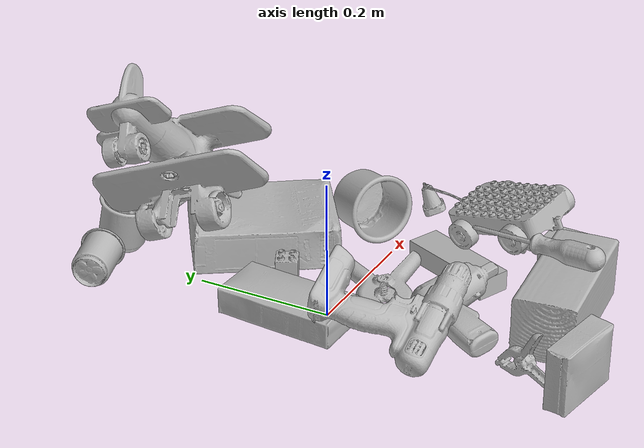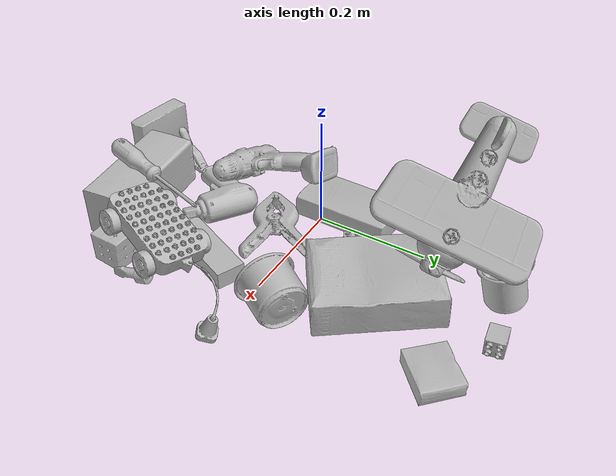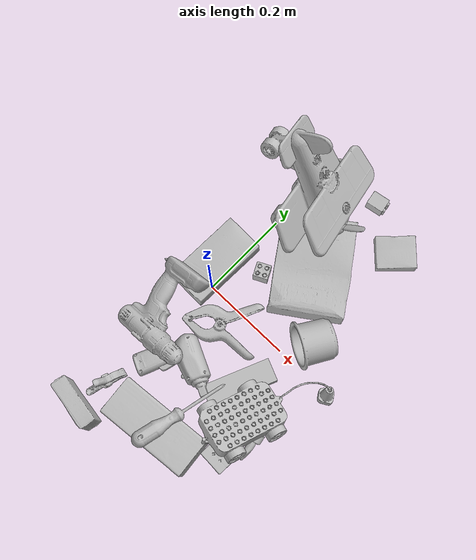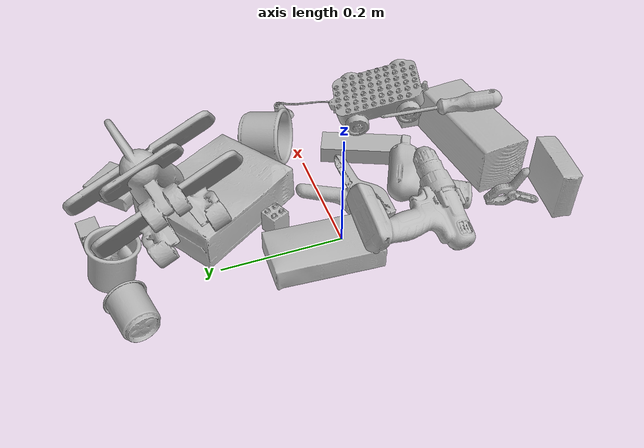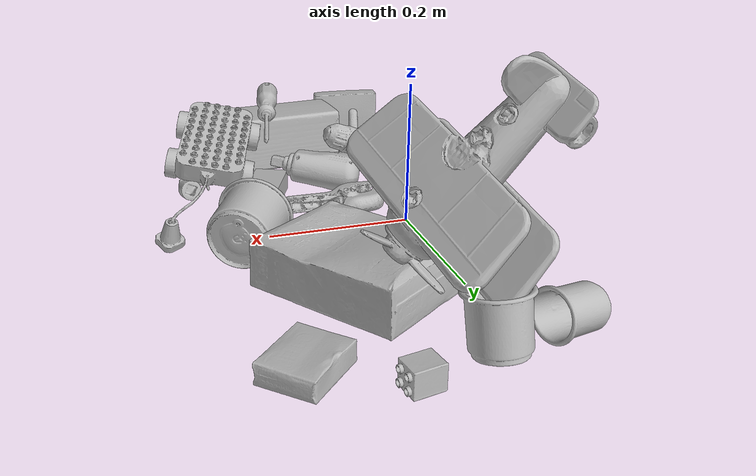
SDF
<sdf version="1.4">
  <world name="default">
    <light name="light1" type="point">
      <pose>0 0 1 0 0 0</pose>
      <diffuse>3 3 3 1</diffuse>
      <specular>3 3 3 1</specular>
    </light>
    <light name="light2" type="point">
      <pose>0 0.5 2 0 0 0</pose>
      <diffuse>1 1 1 1</diffuse>
      <specular>1 1 1 1</specular>
    </light>
    <light name="light3" type="point">
      <pose>0 0.5 2 0 0 0</pose>
      <diffuse>3 3 3 1</diffuse>
      <specular>3 3 3 1</specular>
    </light>
    <scene>
      <ambient>0.7 0.7 0.7</ambient>
    </scene>
    <model name="box21">
      <link name="link_box21">
        <collision name="default">
          <geometry>
            <mesh>
              <uri>model://cracker_box/collision_meshes/collision.obj</uri>
              <scale>1.0 1.0 1.0</scale>
            </mesh>
          </geometry>
          <surface>
            <friction>
              <ode>
                <mu>0.5</mu>
                <mu2>0.5</mu2>
              </ode>
            </friction>
          <contact>
        <ode>
            <max_vel>0</max_vel>
            <min_depth>0.0001</min_depth>
            <kp>1e8</kp>
        </ode>
    </contact></surface>
        </collision>
        <visual name="default">
          <geometry>
            <mesh>
              <uri>model://cracker_box/visual_meshes/visual.dae</uri>
              <scale>1.0 1.0 1.0</scale>
            </mesh>
          </geometry>
        </visual>
        <inertial>
          <mass>2.2869980335235596</mass>
          <pose>0.0009464151225984097 0.0002543425071053207 -0.0017029535956680775 -0.0003162075418873318 -0.011106487737663914 0.0025467956997025456</pose>
          <inertia>
            <ixx>0.005817102</ixx>
            <iyy>0.009605178</iyy>
            <izz>0.013707472</izz>
            <ixy>0</ixy>
            <ixz>0</ixz>
            <iyz>0</iyz>
          </inertia>
        </inertial>
      </link>
      <pose>0.1287691295146942 0.1736784428358078 0.036481600254774094 -0.011803749536822512 -0.0073676758945942 2.1692019973969554</pose>
    </model>
    <model name="box22">
      <link name="link_box22">
        <collision name="default">
          <geometry>
            <mesh>
              <uri>model://pudding_box/collision_meshes/collision.obj</uri>
              <scale>1.0 1.0 1.0</scale>
            </mesh>
          </geometry>
          <surface>
            <friction>
              <ode>
                <mu>0.5</mu>
                <mu2>0.5</mu2>
              </ode>
            </friction>
          <contact>
        <ode>
            <max_vel>0</max_vel>
            <min_depth>0.0001</min_depth>
            <kp>1e8</kp>
        </ode>
    </contact></surface>
        </collision>
        <visual name="default">
          <geometry>
            <mesh>
              <uri>model://pudding_box/visual_meshes/visual.dae</uri>
              <scale>1.0 1.0 1.0</scale>
            </mesh>
          </geometry>
        </visual>
        <inertial>
          <mass>0.5370154976844788</mass>
          <pose>0.0004894821904599667 0.0008067885646596551 -0.0005188827635720372 0.005213101796859606 -0.006603800100757192 0.02007981956729938</pose>
          <inertia>
            <ixx>0.0006070684</ixx>
            <iyy>0.00040843996</iyy>
            <izz>0.00089649507</izz>
            <ixy>0</ixy>
            <ixz>0</ixz>
            <iyz>0</iyz>
          </inertia>
        </inertial>
      </link>
      <pose>-0.023392070084810257 -0.37146079540252686 0.0445966012775898 0.006649825149709273 -1.547314605401711 -1.7620697774649143</pose>
    </model>
    <model name="box23">
      <link name="link_box23">
        <collision name="default">
          <geometry>
            <mesh>
              <uri>model://jenga/collision_meshes/collision.obj</uri>
              <scale>1.0 1.0 1.0</scale>
            </mesh>
          </geometry>
          <surface>
            <friction>
              <ode>
                <mu>0.5</mu>
                <mu2>0.5</mu2>
              </ode>
            </friction>
          <contact>
        <ode>
            <max_vel>0</max_vel>
            <min_depth>0.0001</min_depth>
            <kp>1e8</kp>
        </ode>
    </contact></surface>
        </collision>
        <visual name="default">
          <geometry>
            <mesh>
              <uri>model://jenga/visual_meshes/visual.dae</uri>
              <scale>1.0 1.0 1.0</scale>
            </mesh>
          </geometry>
        </visual>
        <inertial>
          <mass>0.17325031757354736</mass>
          <pose>-2.502855807051674e-07 -0.0001025000965455547 -4.0923401684267446e-05 0.0 -7.34215461761844e-07 0.0</pose>
          <inertia>
            <ixx>4.7942573e-05</ixx>
            <iyy>0.00032485754</iyy>
            <izz>0.00034681303</izz>
            <ixy>0</ixy>
            <ixz>0</ixz>
            <iyz>0</iyz>
          </inertia>
        </inertial>
      </link>
      <pose>0.186960369348526 -0.1101660504937172 0.01499966811388731 2.8027771470168465e-06 1.3698683522651204e-06 1.1590050528612685</pose>
    </model>
    <model name="cup1">
      <link name="link_cup1">
        <collision name="default">
          <geometry>
            <mesh>
              <uri>model://c_cups/collision_meshes/collision.obj</uri>
              <scale>1.0 1.0 1.0</scale>
            </mesh>
          </geometry>
          <surface>
            <friction>
              <ode>
                <mu>0.5</mu>
                <mu2>0.5</mu2>
              </ode>
            </friction>
          <contact>
        <ode>
            <max_vel>0</max_vel>
            <min_depth>0.0001</min_depth>
            <kp>1e8</kp>
        </ode>
    </contact></surface>
        </collision>
        <visual name="default">
          <geometry>
            <mesh>
              <uri>model://c_cups/visual_meshes/visual.dae</uri>
              <scale>1.0 1.0 1.0</scale>
            </mesh>
          </geometry>
        </visual>
        <inertial>
          <mass>0.033937059342861176</mass>
          <pose>0.0007237257086671889 0.002015391131862998 -0.0012750985333696008 0.3021568203324006 0.0134615240317058 -0.08771816491093205</pose>
          <inertia>
            <ixx>2.5238536e-05</ixx>
            <iyy>2.4792533e-05</iyy>
            <izz>2.2320162e-05</izz>
            <ixy>0</ixy>
            <ixz>0</ixz>
            <iyz>0</iyz>
          </inertia>
        </inertial>
      </link>
      <pose>-0.0621798001229763 0.3356654942035675 0.02987067773938179 1.4750800087513558 -0.39544597107955626 1.8769943720118532</pose>
    </model>
    <model name="cup2">
      <link name="link_cup2">
        <collision name="default">
          <geometry>
            <mesh>
              <uri>model://f_cups/collision_meshes/collision.obj</uri>
              <scale>1.0 1.0 1.0</scale>
            </mesh>
          </geometry>
          <surface>
            <friction>
              <ode>
                <mu>0.5</mu>
                <mu2>0.5</mu2>
              </ode>
            </friction>
          <contact>
        <ode>
            <max_vel>0</max_vel>
            <min_depth>0.0001</min_depth>
            <kp>1e8</kp>
        </ode>
    </contact></surface>
        </collision>
        <visual name="default">
          <geometry>
            <mesh>
              <uri>model://f_cups/visual_meshes/visual.dae</uri>
              <scale>1.0 1.0 1.0</scale>
            </mesh>
          </geometry>
        </visual>
        <inertial>
          <mass>0.10278050601482391</mass>
          <pose>-0.003171466989442706 -0.0006240068469196558 -0.003655537962913513 0.7862283183637603 -0.2607933822369466 -0.1823733550036739</pose>
          <inertia>
            <ixx>9.661645e-05</ixx>
            <iyy>0.00010135175</iyy>
            <izz>0.000105510015</izz>
            <ixy>0</ixy>
            <ixz>0</ixz>
            <iyz>0</iyz>
          </inertia>
        </inertial>
      </link>
      <pose>0.035383958369493484 0.35215526819229126 0.04172515869140625 -0.05192630018212439 -0.21088486593916483 1.9341306842571968</pose>
    </model>
    <model name="box11">
      <link name="link_box11">
        <collision name="default">
          <geometry>
            <mesh>
              <uri>model://wood_block/collision_meshes/collision.obj</uri>
              <scale>1.0 1.0 1.0</scale>
            </mesh>
          </geometry>
          <surface>
            <friction>
              <ode>
                <mu>0.5</mu>
                <mu2>0.5</mu2>
              </ode>
            </friction>
          <contact>
        <ode>
            <max_vel>0</max_vel>
            <min_depth>0.0001</min_depth>
            <kp>1e8</kp>
        </ode>
    </contact></surface>
        </collision>
        <visual name="default">
          <geometry>
            <mesh>
              <uri>model://wood_block/visual_meshes/visual.dae</uri>
              <scale>1.0 1.0 1.0</scale>
            </mesh>
          </geometry>
        </visual>
        <inertial>
          <mass>2.321592330932617</mass>
          <pose>-5.813315056002466e-06 -0.000570809468626976 0.0002640858292579651 -0.052209755297172346 -0.005192694580027673 -0.006861376555374886</pose>
          <inertia>
            <ixx>0.0031066423</ixx>
            <iyy>0.009813884</iyy>
            <izz>0.009777175</izz>
            <ixy>0</ixy>
            <ixz>0</ixz>
            <iyz>0</iyz>
          </inertia>
        </inertial>
      </link>
      <pose>0.1273047924041748 -0.2946861684322357 0.045258525758981705 -0.005207897751808584 0.0057188129992489945 -3.050954865334337</pose>
    </model>
    <model name="box12">
      <link name="link_box12">
        <collision name="default">
          <geometry>
            <mesh>
              <uri>model://gelatin_box/collision_meshes/collision.obj</uri>
              <scale>1.0 1.0 1.0</scale>
            </mesh>
          </geometry>
          <surface>
            <friction>
              <ode>
                <mu>0.5</mu>
                <mu2>0.5</mu2>
              </ode>
            </friction>
          <contact>
        <ode>
            <max_vel>0</max_vel>
            <min_depth>0.0001</min_depth>
            <kp>1e8</kp>
        </ode>
    </contact></surface>
        </collision>
        <visual name="default">
          <geometry>
            <mesh>
              <uri>model://gelatin_box/visual_meshes/visual.dae</uri>
              <scale>1.0 1.0 1.0</scale>
            </mesh>
          </geometry>
        </visual>
        <inertial>
          <mass>0.2263340801000595</mass>
          <pose>0.0004319618456065655 0.00011156871914863586 -0.00036403207923285663 -0.001050371981036731 -0.004755818689382226 0.016440561334450605</pose>
          <inertia>
            <ixx>0.00015977336</ixx>
            <iyy>0.00011412529</iyy>
            <izz>0.00024321067</izz>
            <ixy>0</ixy>
            <ixz>0</ixz>
            <iyz>0</iyz>
          </inertia>
        </inertial>
      </link>
      <pose>0.23468869924545288 0.32464662194252014 0.01516831386834383 0.0055974721056838705 -0.007304559670557647 2.3410854101110177</pose>
    </model>
    <model name="box13">
      <link name="link_box13">
        <collision name="default">
          <geometry>
            <mesh>
              <uri>model://sugar_box/collision_meshes/collision.obj</uri>
              <scale>1.0 1.0 1.0</scale>
            </mesh>
          </geometry>
          <surface>
            <friction>
              <ode>
                <mu>0.5</mu>
                <mu2>0.5</mu2>
              </ode>
            </friction>
          <contact>
        <ode>
            <max_vel>0</max_vel>
            <min_depth>0.0001</min_depth>
            <kp>1e8</kp>
        </ode>
    </contact></surface>
        </collision>
        <visual name="default">
          <geometry>
            <mesh>
              <uri>model://sugar_box/visual_meshes/visual.dae</uri>
              <scale>1.0 1.0 1.0</scale>
            </mesh>
          </geometry>
        </visual>
        <inertial>
          <mass>0.4976349174976349</mass>
          <pose>0.0010343727190047503 3.849109634757042e-05 -0.00036364805418998003 -0.0004046263004245651 0.001050663405794887 0.002615379021776999</pose>
          <inertia>
            <ixx>0.0004146281</ixx>
            <iyy>0.0013401629</iyy>
            <izz>0.0016043353</izz>
            <ixy>0</ixy>
            <ixz>0</ixz>
            <iyz>0</iyz>
          </inertia>
        </inertial>
      </link>
      <pose>-0.030740322545170784 0.04236716777086258 0.022798707708716393 0.0007374107026261249 -0.023420584619531032 1.5273828760681512</pose>
    </model>
    <model name="box14">
      <link name="link_box14">
        <collision name="default">
          <geometry>
            <mesh>
              <uri>model://rubiks_cube/collision_meshes/collision.obj</uri>
              <scale>1.0 1.0 1.0</scale>
            </mesh>
          </geometry>
          <surface>
            <friction>
              <ode>
                <mu>0.5</mu>
                <mu2>0.5</mu2>
              </ode>
            </friction>
          <contact>
        <ode>
            <max_vel>0</max_vel>
            <min_depth>0.0001</min_depth>
            <kp>1e8</kp>
        </ode>
    </contact></surface>
        </collision>
        <visual name="default">
          <geometry>
            <mesh>
              <uri>model://rubiks_cube/visual_meshes/visual.dae</uri>
              <scale>1.0 1.0 1.0</scale>
            </mesh>
          </geometry>
        </visual>
        <inertial>
          <mass>0.2531126141548157</mass>
          <pose>2.6721041649580002e-05 5.2569666877388954e-05 -7.264316536748083e-06 -0.05467274129792389 -0.0981396008906979 -0.0344563195746163</pose>
          <inertia>
            <ixx>0.00013986173</ixx>
            <iyy>0.00013920949</iyy>
            <izz>0.00014102072</izz>
            <ixy>0</ixy>
            <ixz>0</ixz>
            <iyz>0</iyz>
          </inertia>
        </inertial>
      </link>
      <pose>0.2595959007740021 -0.24159422516822815 0.029059693217277527 -3.134143810183395 0.01089032313075639 1.4867840203220186</pose>
    </model>
    <model name="cup15">
      <link name="link_cup15">
        <collision name="default">
          <geometry>
            <mesh>
              <uri>model://j_cups/collision_meshes/collision.obj</uri>
              <scale>1.0 1.0 1.0</scale>
            </mesh>
          </geometry>
          <surface>
            <friction>
              <ode>
                <mu>0.5</mu>
                <mu2>0.5</mu2>
              </ode>
            </friction>
          <contact>
        <ode>
            <max_vel>0</max_vel>
            <min_depth>0.0001</min_depth>
            <kp>1e8</kp>
        </ode>
    </contact></surface>
        </collision>
        <visual name="default">
          <geometry>
            <mesh>
              <uri>model://j_cups/visual_meshes/visual.dae</uri>
              <scale>1.0 1.0 1.0</scale>
            </mesh>
          </geometry>
        </visual>
        <inertial>
          <mass>0.12765173614025116</mass>
          <pose>0.0006164864171296358 0.0005398980574682355 -0.0013479006011039019 0.030303852295551513 0.03757989298695449 0.4386938541947324</pose>
          <inertia>
            <ixx>0.00018743309</ixx>
            <iyy>0.00018938213</iyy>
            <izz>0.0002160715</izz>
            <ixy>0</ixy>
            <ixz>0</ixz>
            <iyz>0</iyz>
          </inertia>
        </inertial>
      </link>
      <pose>0.24134084582328796 0.057352226227521896 0.04694885388016701 -1.0421497974061986 1.3224749584094033 3.115083903251909</pose>
    </model>
    <model name="toy1">
      <link name="link_toy1">
        <collision name="default">
          <geometry>
            <mesh>
              <uri>model://f_lego_duplo/collision_meshes/collision.obj</uri>
              <scale>1.0 1.0 1.0</scale>
            </mesh>
          </geometry>
          <surface>
            <friction>
              <ode>
                <mu>0.5</mu>
                <mu2>0.5</mu2>
              </ode>
            </friction>
          <contact>
        <ode>
            <max_vel>0</max_vel>
            <min_depth>0.0001</min_depth>
            <kp>1e8</kp>
        </ode>
    </contact></surface>
        </collision>
        <visual name="default">
          <geometry>
            <mesh>
              <uri>model://f_lego_duplo/visual_meshes/visual.dae</uri>
              <scale>1.0 1.0 1.0</scale>
            </mesh>
          </geometry>
        </visual>
        <inertial>
          <mass>0.04013235494494438</mass>
          <pose>2.369376306887716e-05 0.00013393163681030273 0.0018837876850739121 0.029838734112773806 -0.014424842824784668 -0.6756708500035773</pose>
          <inertia>
            <ixx>8.480189e-06</ixx>
            <iyy>8.555736e-06</iyy>
            <izz>7.361164e-06</izz>
            <ixy>0</ixy>
            <ixz>0</ixz>
            <iyz>0</iyz>
          </inertia>
        </inertial>
      </link>
      <pose>0.057325005531311035 0.09449131041765213 0.02187095768749714 -8.211080158251147e-07 2.146187303452429e-06 2.0225042048119755</pose>
    </model>
    <model name="toy2">
      <link name="link_toy2">
        <collision name="default">
          <geometry>
            <mesh>
              <uri>model://e_toy_airplane/collision_meshes/collision.obj</uri>
              <scale>1.0 1.0 1.0</scale>
            </mesh>
          </geometry>
          <surface>
            <friction>
              <ode>
                <mu>0.5</mu>
                <mu2>0.5</mu2>
              </ode>
            </friction>
          <contact>
        <ode>
            <max_vel>0</max_vel>
            <min_depth>0.0001</min_depth>
            <kp>1e8</kp>
        </ode>
    </contact></surface>
        </collision>
        <visual name="default">
          <geometry>
            <mesh>
              <uri>model://e_toy_airplane/visual_meshes/visual.dae</uri>
              <scale>1.0 1.0 1.0</scale>
            </mesh>
          </geometry>
        </visual>
        <inertial>
          <mass>0.030105752870440483</mass>
          <pose>0.00011740480840671808 -2.248285454697907e-05 -0.011187204159796238 0.0055184715057391125 0.009228317867647443 0.150413097465581</pose>
          <inertia>
            <ixx>9.18862e-06</ixx>
            <iyy>9.094625e-06</iyy>
            <izz>2.761542e-06</izz>
            <ixy>0</ixy>
            <ixz>0</ixz>
            <iyz>0</iyz>
          </inertia>
        </inertial>
      </link>
      <pose>0.291348397731781 -0.18831007182598114 0.012218542397022247 1.7467275163363385 -0.09688998308788474 0.15417243389689825</pose>
    </model>
    <model name="toy3">
      <link name="link_toy3">
        <collision name="default">
          <geometry>
            <mesh>
              <uri>model://g_lego_duplo/collision_meshes/collision.obj</uri>
              <scale>1.0 1.0 1.0</scale>
            </mesh>
          </geometry>
          <surface>
            <friction>
              <ode>
                <mu>0.5</mu>
                <mu2>0.5</mu2>
              </ode>
            </friction>
          <contact>
        <ode>
            <max_vel>0</max_vel>
            <min_depth>0.0001</min_depth>
            <kp>1e8</kp>
        </ode>
    </contact></surface>
        </collision>
        <visual name="default">
          <geometry>
            <mesh>
              <uri>model://g_lego_duplo/visual_meshes/visual.dae</uri>
              <scale>1.0 1.0 1.0</scale>
            </mesh>
          </geometry>
        </visual>
        <inertial>
          <mass>0.4529305100440979</mass>
          <pose>-0.050047703087329865 0.0017554633086547256 0.0038806775119155645 0.010963008114131517 0.03810824387856379 -0.09653032518797504</pose>
          <inertia>
            <ixx>0.00065630145</ixx>
            <iyy>0.0019842102</iyy>
            <izz>0.0024823209</izz>
            <ixy>0</ixy>
            <ixz>0</ixz>
            <iyz>0</iyz>
          </inertia>
        </inertial>
      </link>
      <pose>0.2675386071205139 -0.10866346955299377 0.06741799414157867 -0.19711599182266076 0.29503974958958334 1.2520820526800478</pose>
    </model>
    <model name="toy4">
      <link name="link_toy4">
        <collision name="default">
          <geometry>
            <mesh>
              <uri>model://b_lego_duplo/collision_meshes/collision.obj</uri>
              <scale>1.0 1.0 1.0</scale>
            </mesh>
          </geometry>
          <surface>
            <friction>
              <ode>
                <mu>0.5</mu>
                <mu2>0.5</mu2>
              </ode>
            </friction>
          <contact>
        <ode>
            <max_vel>0</max_vel>
            <min_depth>0.0001</min_depth>
            <kp>1e8</kp>
        </ode>
    </contact></surface>
        </collision>
        <visual name="default">
          <geometry>
            <mesh>
              <uri>model://b_lego_duplo/visual_meshes/visual.dae</uri>
              <scale>1.0 1.0 1.0</scale>
            </mesh>
          </geometry>
        </visual>
        <inertial>
          <mass>0.018499748781323433</mass>
          <pose>-0.00011053003981942311 -9.15247255761642e-06 0.001929429592564702 -0.037494549291744686 -0.026354734626349716 0.4518828938821803</pose>
          <inertia>
            <ixx>3.786112e-06</ixx>
            <iyy>3.8115643e-06</iyy>
            <izz>3.3733036e-06</izz>
            <ixy>0</ixy>
            <ixz>0</ixz>
            <iyz>0</iyz>
          </inertia>
        </inertial>
      </link>
      <pose>0.13329359889030457 0.38114404678344727 0.01621665246784687 -1.5803372484021998 0.00014412456553394908 -1.4088700273039814</pose>
    </model>
    <model name="toy5">
      <link name="link_toy5">
        <collision name="default">
          <geometry>
            <mesh>
              <uri>model://b_toy_airplane/collision_meshes/collision.obj</uri>
              <scale>1.0 1.0 1.0</scale>
            </mesh>
          </geometry>
          <surface>
            <friction>
              <ode>
                <mu>0.5</mu>
                <mu2>0.5</mu2>
              </ode>
            </friction>
          <contact>
        <ode>
            <max_vel>0</max_vel>
            <min_depth>0.0001</min_depth>
            <kp>1e8</kp>
        </ode>
    </contact></surface>
        </collision>
        <visual name="default">
          <geometry>
            <mesh>
              <uri>model://b_toy_airplane/visual_meshes/visual.dae</uri>
              <scale>1.0 1.0 1.0</scale>
            </mesh>
          </geometry>
        </visual>
        <inertial>
          <mass>0.38904744386672974</mass>
          <pose>0.00508136348798871 0.004015582147985697 0.00954306498169899 -0.040018071915393034 -0.04022181905785318 -0.5601502897874057</pose>
          <inertia>
            <ixx>0.00072227366</ixx>
            <iyy>0.0002886998</iyy>
            <izz>0.0008985803</izz>
            <ixy>0</ixy>
            <ixz>0</ixz>
            <iyz>0</iyz>
          </inertia>
        </inertial>
      </link>
      <pose>0.06021997332572937 -0.16238228976726532 0.019264210015535355 0.15698514124224455 -0.1159090445813867 -0.4562833153705389</pose>
    </model>
    <model name="toy6">
      <link name="link_toy6">
        <collision name="default">
          <geometry>
            <mesh>
              <uri>model://a_toy_airplane/collision_meshes/collision.obj</uri>
              <scale>1.0 1.0 1.0</scale>
            </mesh>
          </geometry>
          <surface>
            <friction>
              <ode>
                <mu>0.5</mu>
                <mu2>0.5</mu2>
              </ode>
            </friction>
          <contact>
        <ode>
            <max_vel>0</max_vel>
            <min_depth>0.0001</min_depth>
            <kp>1e8</kp>
        </ode>
    </contact></surface>
        </collision>
        <visual name="default">
          <geometry>
            <mesh>
              <uri>model://a_toy_airplane/visual_meshes/visual.dae</uri>
              <scale>1.0 1.0 1.0</scale>
            </mesh>
          </geometry>
        </visual>
        <inertial>
          <mass>2.344027519226074</mass>
          <pose>0.025165099650621414 -0.003707322059199214 -0.0011962436838075519 -0.012016950381748406 -0.14663507119063698 0.004149124939747771</pose>
          <inertia>
            <ixx>0.008512287</ixx>
            <iyy>0.012404123</iyy>
            <izz>0.014523712</izz>
            <ixy>0</ixy>
            <ixz>0</ixz>
            <iyz>0</iyz>
          </inertia>
        </inertial>
      </link>
      <pose>0.02957206405699253 0.27570876479148865 0.1807929277420044 -0.6332757293806761 0.9995942809196245 -0.3435765772468086</pose>
    </model>
    <model name="hardware1">
      <link name="link_hardware1">
        <collision name="default">
          <geometry>
            <mesh>
              <uri>model://power_drill/collision_meshes/collision.obj</uri>
              <scale>1.0 1.0 1.0</scale>
            </mesh>
          </geometry>
          <surface>
            <friction>
              <ode>
                <mu>0.5</mu>
                <mu2>0.5</mu2>
              </ode>
            </friction>
          <contact>
        <ode>
            <max_vel>0</max_vel>
            <min_depth>0.0001</min_depth>
            <kp>1e8</kp>
        </ode>
    </contact></surface>
        </collision>
        <visual name="default">
          <geometry>
            <mesh>
              <uri>model://power_drill/visual_meshes/visual.dae</uri>
              <scale>1.0 1.0 1.0</scale>
            </mesh>
          </geometry>
        </visual>
        <inertial>
          <mass>0.3504050374031067</mass>
          <pose>-0.014780547469854355 0.014369429089128971 0.0012414171360433102 0.0046091621872236125 0.004073022304059966 -0.18362696816981472</pose>
          <inertia>
            <ixx>0.001427917</ixx>
            <iyy>0.0005618108</iyy>
            <izz>0.0018858167</izz>
            <ixy>0</ixy>
            <ixz>0</ixz>
            <iyz>0</iyz>
          </inertia>
        </inertial>
      </link>
      <pose>-0.01993090845644474 -0.10304020345211029 0.06873869895935059 -2.8931429281020287 -0.38342362898207133 0.020849125924004553</pose>
    </model>
    <model name="hardware2">
      <link name="link_hardware2">
        <collision name="default">
          <geometry>
            <mesh>
              <uri>model://phillips_screwdriver/collision_meshes/collision.obj</uri>
              <scale>1.0 1.0 1.0</scale>
            </mesh>
          </geometry>
          <surface>
            <friction>
              <ode>
                <mu>0.5</mu>
                <mu2>0.5</mu2>
              </ode>
            </friction>
          <contact>
        <ode>
            <max_vel>0</max_vel>
            <min_depth>0.0001</min_depth>
            <kp>1e8</kp>
        </ode>
    </contact></surface>
        </collision>
        <visual name="default">
          <geometry>
            <mesh>
              <uri>model://phillips_screwdriver/visual_meshes/visual.dae</uri>
              <scale>1.0 1.0 1.0</scale>
            </mesh>
          </geometry>
        </visual>
        <inertial>
          <mass>0.06613585352897644</mass>
          <pose>-0.04777182638645172 0.0010362302418798208 -0.000455554953077808 -0.157256923583716 0.005850995849984215 -0.0021567369270283215</pose>
          <inertia>
            <ixx>7.770284e-06</ixx>
            <iyy>9.742579e-05</iyy>
            <izz>9.7508564e-05</izz>
            <ixy>0</ixy>
            <ixz>0</ixz>
            <iyz>0</iyz>
          </inertia>
        </inertial>
      </link>
      <pose>0.14784236252307892 -0.24361878633499146 0.10298316180706024 -1.7132384608956523 0.11321500448188114 1.350088473027839</pose>
    </model>
    <model name="hardware3">
      <link name="link_hardware3">
        <collision name="default">
          <geometry>
            <mesh>
              <uri>model://large_clamp/collision_meshes/collision.obj</uri>
              <scale>1.0 1.0 1.0</scale>
            </mesh>
          </geometry>
          <surface>
            <friction>
              <ode>
                <mu>0.5</mu>
                <mu2>0.5</mu2>
              </ode>
            </friction>
          <contact>
        <ode>
            <max_vel>0</max_vel>
            <min_depth>0.0001</min_depth>
            <kp>1e8</kp>
        </ode>
    </contact></surface>
        </collision>
        <visual name="default">
          <geometry>
            <mesh>
              <uri>model://large_clamp/visual_meshes/visual.dae</uri>
              <scale>1.0 1.0 1.0</scale>
            </mesh>
          </geometry>
        </visual>
        <inertial>
          <mass>0.0812491774559021</mass>
          <pose>0.00636935792863369 0.00035856812610290945 -0.0001839803153416142 -0.0021330695247891995 0.009671592144941876 0.026633191629386817</pose>
          <inertia>
            <ixx>7.1684015e-05</ixx>
            <iyy>0.00013613176</iyy>
            <izz>0.00019693196</izz>
            <ixy>0</ixy>
            <ixz>0</ixz>
            <iyz>0</iyz>
          </inertia>
        </inertial>
      </link>
      <pose>0.07341311872005463 -0.048453930765390396 0.018504604697227478 -0.01227548938314841 0.04692825503606441 -2.604988314942956</pose>
    </model>
    <model name="hardware4">
      <link name="link_hardware4">
        <collision name="default">
          <geometry>
            <mesh>
              <uri>model://medium_clamp/collision_meshes/collision.obj</uri>
              <scale>1.0 1.0 1.0</scale>
            </mesh>
          </geometry>
          <surface>
            <friction>
              <ode>
                <mu>0.5</mu>
                <mu2>0.5</mu2>
              </ode>
            </friction>
          <contact>
        <ode>
            <max_vel>0</max_vel>
            <min_depth>0.0001</min_depth>
            <kp>1e8</kp>
        </ode>
    </contact></surface>
        </collision>
        <visual name="default">
          <geometry>
            <mesh>
              <uri>model://medium_clamp/visual_meshes/visual.dae</uri>
              <scale>1.0 1.0 1.0</scale>
            </mesh>
          </geometry>
        </visual>
        <inertial>
          <mass>0.04165364429354668</mass>
          <pose>0.0053909956477582455 0.00039532381924800575 -0.0001222159044118598 -0.0012269202016338824 0.0025845009837354585 0.038207769727488725</pose>
          <inertia>
            <ixx>1.134795e-05</ixx>
            <iyy>1.6514476e-05</iyy>
            <izz>2.5437248e-05</izz>
            <ixy>0</ixy>
            <ixz>0</ixz>
            <iyz>0</iyz>
          </inertia>
        </inertial>
      </link>
      <pose>-0.016062958166003227 -0.2983127534389496 0.02436235547065735 1.5765716151910956 0.3934703472575046 1.2808982671229026</pose>
    </model>
  <physics type="ode">
      <max_contacts>50</max_contacts>
      <ode>
        <solver>
          <type>quick</type>
          <iters>75</iters>
        </solver>
        <constraints>
          <contact_max_correcting_vel>0</contact_max_correcting_vel>
          <contact_surface_layer>0</contact_surface_layer>
        </constraints>
      </ode>
    </physics></world>
</sdf>
